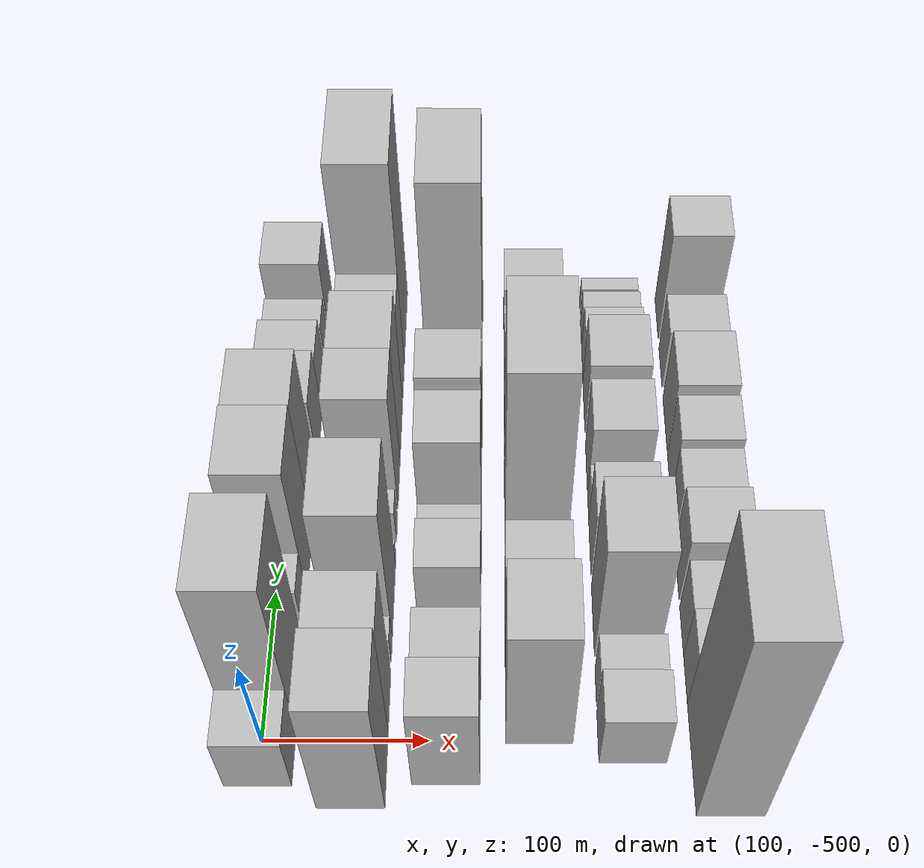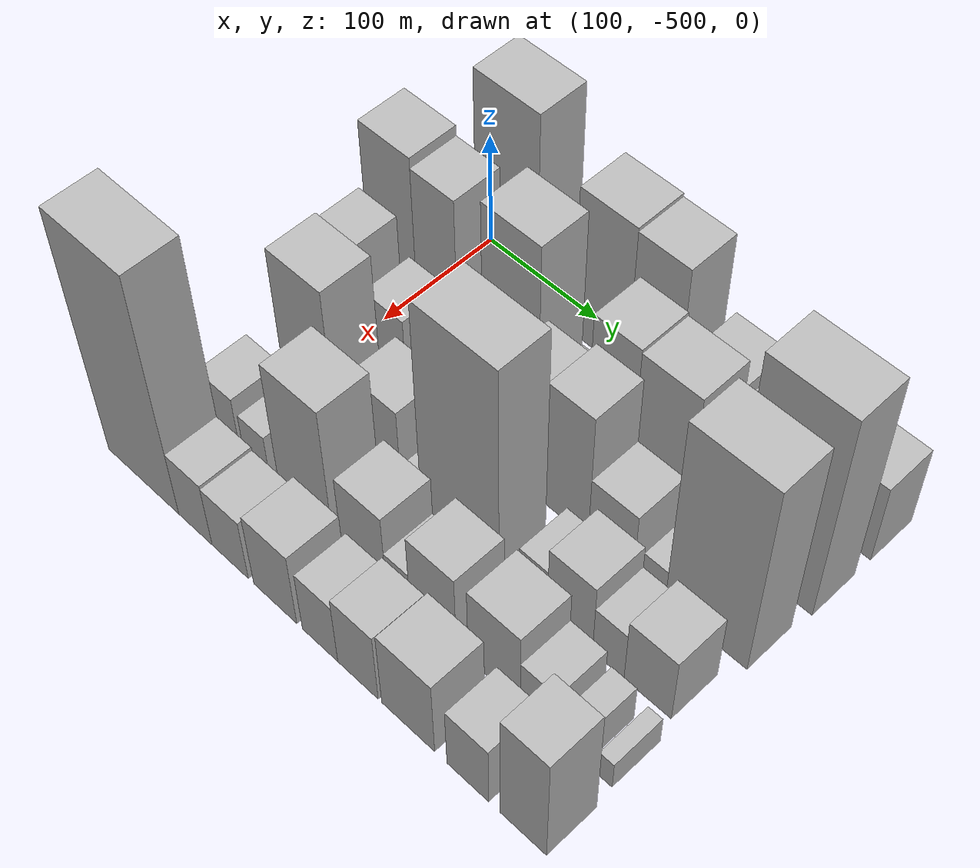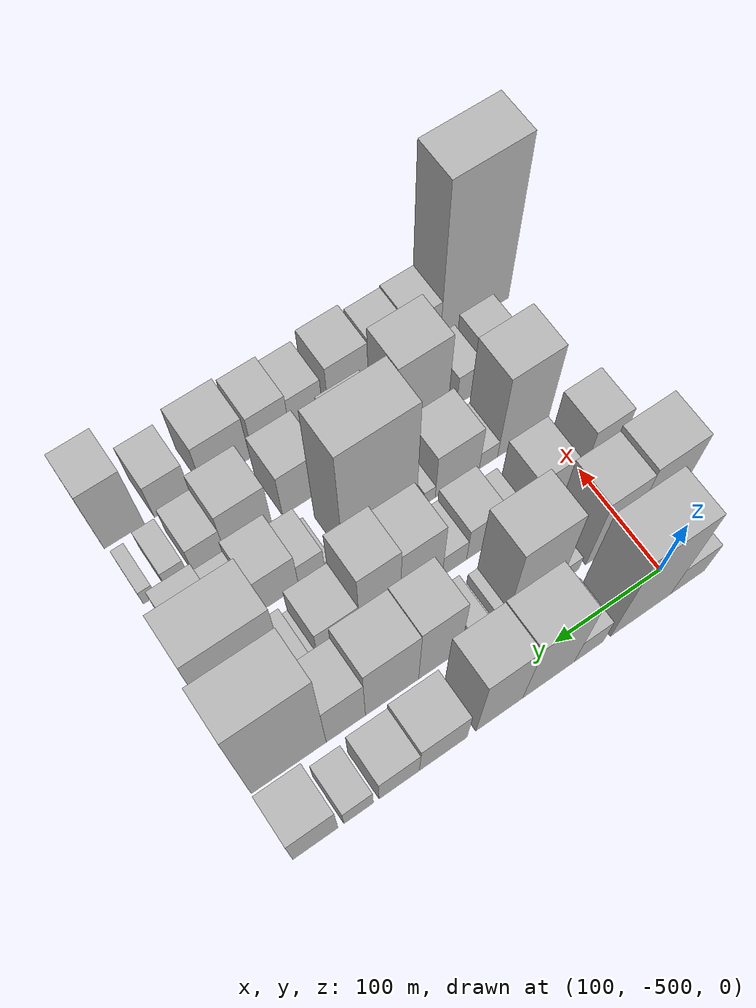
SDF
<sdf version="1.6">
 <world name="default">
  <model name="building_9">
   <static>1</static>
   <pose>100.0000 -510.9255 0 0.000000 0.000000 0.000000</pose>
   <link name="link">
    <pose>0 0 30.00 0 0 0</pose>
    <collision name="collision"><geometry><box><size>40.0000 33.5798 60.0000</size></box></geometry></collision>
    <visual name="visual">
     <cast_shadows>0</cast_shadows>
     <geometry><box><size>40.0000 33.5798 60.0000</size></box></geometry>
     <material>
      <script>
       <uri>model://HANNAS_wall/materials/scripts</uri>
       <uri>model://HANNAS_wall/materials/textures</uri>
       <name>vrc/HANNAS_wall</name>
      </script>
     </material>
    </visual>
   </link>
  </model>
  <model name="building_10">
   <static>1</static>
   <pose>100.0000 -465.3672 0 0.000000 0.000000 0.000000</pose>
   <link name="link">
    <pose>0 0 88.50 0 0 0</pose>
    <collision name="collision"><geometry><box><size>40.0000 57.5368 177.0000</size></box></geometry></collision>
    <visual name="visual">
     <cast_shadows>0</cast_shadows>
     <geometry><box><size>40.0000 57.5368 177.0000</size></box></geometry>
     <material>
      <script>
       <uri>model://HANNAS_wall/materials/scripts</uri>
       <uri>model://HANNAS_wall/materials/textures</uri>
       <name>vrc/HANNAS_wall</name>
      </script>
     </material>
    </visual>
   </link>
  </model>
  <model name="building_11">
   <static>1</static>
   <pose>100.0000 -416.0420 0 0.000000 0.000000 0.000000</pose>
   <link name="link">
    <pose>0 0 27.00 0 0 0</pose>
    <collision name="collision"><geometry><box><size>40.0000 27.1138 54.0000</size></box></geometry></collision>
    <visual name="visual">
     <cast_shadows>0</cast_shadows>
     <geometry><box><size>40.0000 27.1138 54.0000</size></box></geometry>
     <material>
      <script>
       <uri>model://HANNAS_wall/materials/scripts</uri>
       <uri>model://HANNAS_wall/materials/textures</uri>
       <name>vrc/HANNAS_wall</name>
      </script>
     </material>
    </visual>
   </link>
  </model>
  <model name="building_12">
   <static>1</static>
   <pose>100.0000 -378.6074 0 0.000000 0.000000 0.000000</pose>
   <link name="link">
    <pose>0 0 70.50 0 0 0</pose>
    <collision name="collision"><geometry><box><size>40.0000 47.7554 141.0000</size></box></geometry></collision>
    <visual name="visual">
     <cast_shadows>0</cast_shadows>
     <geometry><box><size>40.0000 47.7554 141.0000</size></box></geometry>
     <material>
      <script>
       <uri>model://HANNAS_wall/materials/scripts</uri>
       <uri>model://HANNAS_wall/materials/textures</uri>
       <name>vrc/HANNAS_wall</name>
      </script>
     </material>
    </visual>
   </link>
  </model>
  <model name="building_13">
   <static>1</static>
   <pose>100.0000 -333.4832 0 0.000000 0.000000 0.000000</pose>
   <link name="link">
    <pose>0 0 69.00 0 0 0</pose>
    <collision name="collision"><geometry><box><size>40.0000 42.4929 138.0000</size></box></geometry></collision>
    <visual name="visual">
     <cast_shadows>0</cast_shadows>
     <geometry><box><size>40.0000 42.4929 138.0000</size></box></geometry>
     <material>
      <script>
       <uri>model://HANNAS_wall/materials/scripts</uri>
       <uri>model://HANNAS_wall/materials/textures</uri>
       <name>vrc/HANNAS_wall</name>
      </script>
     </material>
    </visual>
   </link>
  </model>
  <model name="building_14">
   <static>1</static>
   <pose>100.0000 -283.0723 0 0.000000 0.000000 0.000000</pose>
   <link name="link">
    <pose>0 0 36.00 0 0 0</pose>
    <collision name="collision"><geometry><box><size>40.0000 42.3288 72.0000</size></box></geometry></collision>
    <visual name="visual">
     <cast_shadows>0</cast_shadows>
     <geometry><box><size>40.0000 42.3288 72.0000</size></box></geometry>
     <material>
      <script>
       <uri>model://HANNAS_wall/materials/scripts</uri>
       <uri>model://HANNAS_wall/materials/textures</uri>
       <name>vrc/HANNAS_wall</name>
      </script>
     </material>
    </visual>
   </link>
  </model>
  <model name="building_15">
   <static>1</static>
   <pose>100.0000 -244.4086 0 0.000000 0.000000 0.000000</pose>
   <link name="link">
    <pose>0 0 30.00 0 0 0</pose>
    <collision name="collision"><geometry><box><size>40.0000 34.9986 60.0000</size></box></geometry></collision>
    <visual name="visual">
     <cast_shadows>0</cast_shadows>
     <geometry><box><size>40.0000 34.9986 60.0000</size></box></geometry>
     <material>
      <script>
       <uri>model://HANNAS_wall/materials/scripts</uri>
       <uri>model://HANNAS_wall/materials/textures</uri>
       <name>vrc/HANNAS_wall</name>
      </script>
     </material>
    </visual>
   </link>
  </model>
  <model name="building_16">
   <static>1</static>
   <pose>100.0000 -209.2729 0 0.000000 0.000000 0.000000</pose>
   <link name="link">
    <pose>0 0 22.50 0 0 0</pose>
    <collision name="collision"><geometry><box><size>40.0000 25.2728 45.0000</size></box></geometry></collision>
    <visual name="visual">
     <cast_shadows>0</cast_shadows>
     <geometry><box><size>40.0000 25.2728 45.0000</size></box></geometry>
     <material>
      <script>
       <uri>model://HANNAS_wall/materials/scripts</uri>
       <uri>model://HANNAS_wall/materials/textures</uri>
       <name>vrc/HANNAS_wall</name>
      </script>
     </material>
    </visual>
   </link>
  </model>
  <model name="building_17">
   <static>1</static>
   <pose>100.0000 -172.5499 0 0.000000 0.000000 0.000000</pose>
   <link name="link">
    <pose>0 0 37.50 0 0 0</pose>
    <collision name="collision"><geometry><box><size>40.0000 38.1732 75.0000</size></box></geometry></collision>
    <visual name="visual">
     <cast_shadows>0</cast_shadows>
     <geometry><box><size>40.0000 38.1732 75.0000</size></box></geometry>
     <material>
      <script>
       <uri>model://HANNAS_wall/materials/scripts</uri>
       <uri>model://HANNAS_wall/materials/textures</uri>
       <name>vrc/HANNAS_wall</name>
      </script>
     </material>
    </visual>
   </link>
  </model>
  <model name="building_61">
   <static>1</static>
   <pose>155.0000 -517.8341 0 0.000000 0.000000 0.000000</pose>
   <link name="link">
    <pose>0 0 69.00 0 0 0</pose>
    <collision name="collision"><geometry><box><size>40.0000 46.5818 138.0000</size></box></geometry></collision>
    <visual name="visual">
     <cast_shadows>0</cast_shadows>
     <geometry><box><size>40.0000 46.5818 138.0000</size></box></geometry>
     <material>
      <script>
       <uri>model://HANNAS_wall/materials/scripts</uri>
       <uri>model://HANNAS_wall/materials/textures</uri>
       <name>vrc/HANNAS_wall</name>
      </script>
     </material>
    </visual>
   </link>
  </model>
  <model name="building_62">
   <static>1</static>
   <pose>155.0000 -475.1864 0 0.000000 0.000000 0.000000</pose>
   <link name="link">
    <pose>0 0 64.50 0 0 0</pose>
    <collision name="collision"><geometry><box><size>40.0000 38.7135 129.0000</size></box></geometry></collision>
    <visual name="visual">
     <cast_shadows>0</cast_shadows>
     <geometry><box><size>40.0000 38.7135 129.0000</size></box></geometry>
     <material>
      <script>
       <uri>model://HANNAS_wall/materials/scripts</uri>
       <uri>model://HANNAS_wall/materials/textures</uri>
       <name>vrc/HANNAS_wall</name>
      </script>
     </material>
    </visual>
   </link>
  </model>
  <model name="building_63">
   <static>1</static>
   <pose>155.0000 -440.5950 0 0.000000 0.000000 0.000000</pose>
   <link name="link">
    <pose>0 0 15.00 0 0 0</pose>
    <collision name="collision"><geometry><box><size>40.0000 16.4694 30.0000</size></box></geometry></collision>
    <visual name="visual">
     <cast_shadows>0</cast_shadows>
     <geometry><box><size>40.0000 16.4694 30.0000</size></box></geometry>
     <material>
      <script>
       <uri>model://HANNAS_wall/materials/scripts</uri>
       <uri>model://HANNAS_wall/materials/textures</uri>
       <name>vrc/HANNAS_wall</name>
      </script>
     </material>
    </visual>
   </link>
  </model>
  <model name="building_64">
   <static>1</static>
   <pose>155.0000 -406.8603 0 0.000000 0.000000 0.000000</pose>
   <link name="link">
    <pose>0 0 73.50 0 0 0</pose>
    <collision name="collision"><geometry><box><size>40.0000 50.9999 147.0000</size></box></geometry></collision>
    <visual name="visual">
     <cast_shadows>0</cast_shadows>
     <geometry><box><size>40.0000 50.9999 147.0000</size></box></geometry>
     <material>
      <script>
       <uri>model://HANNAS_wall/materials/scripts</uri>
       <uri>model://HANNAS_wall/materials/textures</uri>
       <name>vrc/HANNAS_wall</name>
      </script>
     </material>
    </visual>
   </link>
  </model>
  <model name="building_65">
   <static>1</static>
   <pose>155.0000 -376.9759 0 0.000000 0.000000 0.000000</pose>
   <link name="link">
    <pose>0 0 10.50 0 0 0</pose>
    <collision name="collision"><geometry><box><size>40.0000 8.7690 21.0000</size></box></geometry></collision>
    <visual name="visual">
     <cast_shadows>0</cast_shadows>
     <geometry><box><size>40.0000 8.7690 21.0000</size></box></geometry>
     <material>
      <script>
       <uri>model://HANNAS_wall/materials/scripts</uri>
       <uri>model://HANNAS_wall/materials/textures</uri>
       <name>vrc/HANNAS_wall</name>
      </script>
     </material>
    </visual>
   </link>
  </model>
  <model name="building_66">
   <static>1</static>
   <pose>155.0000 -354.3933 0 0.000000 0.000000 0.000000</pose>
   <link name="link">
    <pose>0 0 18.00 0 0 0</pose>
    <collision name="collision"><geometry><box><size>40.0000 18.3961 36.0000</size></box></geometry></collision>
    <visual name="visual">
     <cast_shadows>0</cast_shadows>
     <geometry><box><size>40.0000 18.3961 36.0000</size></box></geometry>
     <material>
      <script>
       <uri>model://HANNAS_wall/materials/scripts</uri>
       <uri>model://HANNAS_wall/materials/textures</uri>
       <name>vrc/HANNAS_wall</name>
      </script>
     </material>
    </visual>
   </link>
  </model>
  <model name="building_67">
   <static>1</static>
   <pose>155.0000 -319.0853 0 0.000000 0.000000 0.000000</pose>
   <link name="link">
    <pose>0 0 61.50 0 0 0</pose>
    <collision name="collision"><geometry><box><size>40.0000 38.2199 123.0000</size></box></geometry></collision>
    <visual name="visual">
     <cast_shadows>0</cast_shadows>
     <geometry><box><size>40.0000 38.2199 123.0000</size></box></geometry>
     <material>
      <script>
       <uri>model://HANNAS_wall/materials/scripts</uri>
       <uri>model://HANNAS_wall/materials/textures</uri>
       <name>vrc/HANNAS_wall</name>
      </script>
     </material>
    </visual>
   </link>
  </model>
  <model name="building_68">
   <static>1</static>
   <pose>155.0000 -276.2588 0 0.000000 0.000000 0.000000</pose>
   <link name="link">
    <pose>0 0 60.00 0 0 0</pose>
    <collision name="collision"><geometry><box><size>40.0000 47.4332 120.0000</size></box></geometry></collision>
    <visual name="visual">
     <cast_shadows>0</cast_shadows>
     <geometry><box><size>40.0000 47.4332 120.0000</size></box></geometry>
     <material>
      <script>
       <uri>model://HANNAS_wall/materials/scripts</uri>
       <uri>model://HANNAS_wall/materials/textures</uri>
       <name>vrc/HANNAS_wall</name>
      </script>
     </material>
    </visual>
   </link>
  </model>
  <model name="building_69">
   <static>1</static>
   <pose>155.0000 -235.3952 0 0.000000 0.000000 0.000000</pose>
   <link name="link">
    <pose>0 0 48.00 0 0 0</pose>
    <collision name="collision"><geometry><box><size>40.0000 34.2940 96.0000</size></box></geometry></collision>
    <visual name="visual">
     <cast_shadows>0</cast_shadows>
     <geometry><box><size>40.0000 34.2940 96.0000</size></box></geometry>
     <material>
      <script>
       <uri>model://HANNAS_wall/materials/scripts</uri>
       <uri>model://HANNAS_wall/materials/textures</uri>
       <name>vrc/HANNAS_wall</name>
      </script>
     </material>
    </visual>
   </link>
  </model>
  <model name="building_70">
   <static>1</static>
   <pose>155.0000 -186.0356 0 0.000000 0.000000 0.000000</pose>
   <link name="link">
    <pose>0 0 97.50 0 0 0</pose>
    <collision name="collision"><geometry><box><size>40.0000 64.4252 195.0000</size></box></geometry></collision>
    <visual name="visual">
     <cast_shadows>0</cast_shadows>
     <geometry><box><size>40.0000 64.4252 195.0000</size></box></geometry>
     <material>
      <script>
       <uri>model://HANNAS_wall/materials/scripts</uri>
       <uri>model://HANNAS_wall/materials/textures</uri>
       <name>vrc/HANNAS_wall</name>
      </script>
     </material>
    </visual>
   </link>
  </model>
  <model name="building_110">
   <static>1</static>
   <pose>210.0000 -509.6735 0 0.000000 0.000000 0.000000</pose>
   <link name="link">
    <pose>0 0 49.50 0 0 0</pose>
    <collision name="collision"><geometry><box><size>40.0000 34.6664 99.0000</size></box></geometry></collision>
    <visual name="visual">
     <cast_shadows>0</cast_shadows>
     <geometry><box><size>40.0000 34.6664 99.0000</size></box></geometry>
     <material>
      <script>
       <uri>model://HANNAS_wall/materials/scripts</uri>
       <uri>model://HANNAS_wall/materials/textures</uri>
       <name>vrc/HANNAS_wall</name>
      </script>
     </material>
    </visual>
   </link>
  </model>
  <model name="building_111">
   <static>1</static>
   <pose>210.0000 -464.3619 0 0.000000 0.000000 0.000000</pose>
   <link name="link">
    <pose>0 0 34.50 0 0 0</pose>
    <collision name="collision"><geometry><box><size>40.0000 35.9568 69.0000</size></box></geometry></collision>
    <visual name="visual">
     <cast_shadows>0</cast_shadows>
     <geometry><box><size>40.0000 35.9568 69.0000</size></box></geometry>
     <material>
      <script>
       <uri>model://HANNAS_wall/materials/scripts</uri>
       <uri>model://HANNAS_wall/materials/textures</uri>
       <name>vrc/HANNAS_wall</name>
      </script>
     </material>
    </visual>
   </link>
  </model>
  <model name="building_112">
   <static>1</static>
   <pose>210.0000 -433.2214 0 0.000000 0.000000 0.000000</pose>
   <link name="link">
    <pose>0 0 13.50 0 0 0</pose>
    <collision name="collision"><geometry><box><size>40.0000 12.3242 27.0000</size></box></geometry></collision>
    <visual name="visual">
     <cast_shadows>0</cast_shadows>
     <geometry><box><size>40.0000 12.3242 27.0000</size></box></geometry>
     <material>
      <script>
       <uri>model://HANNAS_wall/materials/scripts</uri>
       <uri>model://HANNAS_wall/materials/textures</uri>
       <name>vrc/HANNAS_wall</name>
      </script>
     </material>
    </visual>
   </link>
  </model>
  <model name="building_113">
   <static>1</static>
   <pose>210.0000 -400.1797 0 0.000000 0.000000 0.000000</pose>
   <link name="link">
    <pose>0 0 31.50 0 0 0</pose>
    <collision name="collision"><geometry><box><size>40.0000 33.7593 63.0000</size></box></geometry></collision>
    <visual name="visual">
     <cast_shadows>0</cast_shadows>
     <geometry><box><size>40.0000 33.7593 63.0000</size></box></geometry>
     <material>
      <script>
       <uri>model://HANNAS_wall/materials/scripts</uri>
       <uri>model://HANNAS_wall/materials/textures</uri>
       <name>vrc/HANNAS_wall</name>
      </script>
     </material>
    </visual>
   </link>
  </model>
  <model name="building_114">
   <static>1</static>
   <pose>210.0000 -371.8859 0 0.000000 0.000000 0.000000</pose>
   <link name="link">
    <pose>0 0 21.00 0 0 0</pose>
    <collision name="collision"><geometry><box><size>40.0000 22.8283 42.0000</size></box></geometry></collision>
    <visual name="visual">
     <cast_shadows>0</cast_shadows>
     <geometry><box><size>40.0000 22.8283 42.0000</size></box></geometry>
     <material>
      <script>
       <uri>model://HANNAS_wall/materials/scripts</uri>
       <uri>model://HANNAS_wall/materials/textures</uri>
       <name>vrc/HANNAS_wall</name>
      </script>
     </material>
    </visual>
   </link>
  </model>
  <model name="building_115">
   <static>1</static>
   <pose>210.0000 -341.2044 0 0.000000 0.000000 0.000000</pose>
   <link name="link">
    <pose>0 0 55.50 0 0 0</pose>
    <collision name="collision"><geometry><box><size>40.0000 38.5346 111.0000</size></box></geometry></collision>
    <visual name="visual">
     <cast_shadows>0</cast_shadows>
     <geometry><box><size>40.0000 38.5346 111.0000</size></box></geometry>
     <material>
      <script>
       <uri>model://HANNAS_wall/materials/scripts</uri>
       <uri>model://HANNAS_wall/materials/textures</uri>
       <name>vrc/HANNAS_wall</name>
      </script>
     </material>
    </visual>
   </link>
  </model>
  <model name="building_116">
   <static>1</static>
   <pose>210.0000 -303.4762 0 0.000000 0.000000 0.000000</pose>
   <link name="link">
    <pose>0 0 61.50 0 0 0</pose>
    <collision name="collision"><geometry><box><size>40.0000 36.9217 123.0000</size></box></geometry></collision>
    <visual name="visual">
     <cast_shadows>0</cast_shadows>
     <geometry><box><size>40.0000 36.9217 123.0000</size></box></geometry>
     <material>
      <script>
       <uri>model://HANNAS_wall/materials/scripts</uri>
       <uri>model://HANNAS_wall/materials/textures</uri>
       <name>vrc/HANNAS_wall</name>
      </script>
     </material>
    </visual>
   </link>
  </model>
  <model name="building_117">
   <static>1</static>
   <pose>210.0000 -266.2286 0 0.000000 0.000000 0.000000</pose>
   <link name="link">
    <pose>0 0 31.50 0 0 0</pose>
    <collision name="collision"><geometry><box><size>40.0000 37.5737 63.0000</size></box></geometry></collision>
    <visual name="visual">
     <cast_shadows>0</cast_shadows>
     <geometry><box><size>40.0000 37.5737 63.0000</size></box></geometry>
     <material>
      <script>
       <uri>model://HANNAS_wall/materials/scripts</uri>
       <uri>model://HANNAS_wall/materials/textures</uri>
       <name>vrc/HANNAS_wall</name>
      </script>
     </material>
    </visual>
   </link>
  </model>
  <model name="building_118">
   <static>1</static>
   <pose>210.0000 -244.1978 0 0.000000 0.000000 0.000000</pose>
   <link name="link">
    <pose>0 0 7.50 0 0 0</pose>
    <collision name="collision"><geometry><box><size>40.0000 6.4879 15.0000</size></box></geometry></collision>
    <visual name="visual">
     <cast_shadows>0</cast_shadows>
     <geometry><box><size>40.0000 6.4879 15.0000</size></box></geometry>
     <material>
      <script>
       <uri>model://HANNAS_wall/materials/scripts</uri>
       <uri>model://HANNAS_wall/materials/textures</uri>
       <name>vrc/HANNAS_wall</name>
      </script>
     </material>
    </visual>
   </link>
  </model>
  <model name="building_119">
   <static>1</static>
   <pose>210.0000 -231.4079 0 0.000000 0.000000 0.000000</pose>
   <link name="link">
    <pose>0 0 16.50 0 0 0</pose>
    <collision name="collision"><geometry><box><size>40.0000 19.0919 33.0000</size></box></geometry></collision>
    <visual name="visual">
     <cast_shadows>0</cast_shadows>
     <geometry><box><size>40.0000 19.0919 33.0000</size></box></geometry>
     <material>
      <script>
       <uri>model://HANNAS_wall/materials/scripts</uri>
       <uri>model://HANNAS_wall/materials/textures</uri>
       <name>vrc/HANNAS_wall</name>
      </script>
     </material>
    </visual>
   </link>
  </model>
  <model name="building_120">
   <static>1</static>
   <pose>210.0000 -189.6673 0 0.000000 0.000000 0.000000</pose>
   <link name="link">
    <pose>0 0 91.50 0 0 0</pose>
    <collision name="collision"><geometry><box><size>40.0000 64.3892 183.0000</size></box></geometry></collision>
    <visual name="visual">
     <cast_shadows>0</cast_shadows>
     <geometry><box><size>40.0000 64.3892 183.0000</size></box></geometry>
     <material>
      <script>
       <uri>model://HANNAS_wall/materials/scripts</uri>
       <uri>model://HANNAS_wall/materials/textures</uri>
       <name>vrc/HANNAS_wall</name>
      </script>
     </material>
    </visual>
   </link>
  </model>
  <model name="building_164">
   <static>1</static>
   <pose>265.0000 -477.3861 0 0.000000 0.000000 0.000000</pose>
   <link name="link">
    <pose>0 0 69.00 0 0 0</pose>
    <collision name="collision"><geometry><box><size>40.0000 48.3148 138.0000</size></box></geometry></collision>
    <visual name="visual">
     <cast_shadows>0</cast_shadows>
     <geometry><box><size>40.0000 48.3148 138.0000</size></box></geometry>
     <material>
      <script>
       <uri>model://HANNAS_wall/materials/scripts</uri>
       <uri>model://HANNAS_wall/materials/textures</uri>
       <name>vrc/HANNAS_wall</name>
      </script>
     </material>
    </visual>
   </link>
  </model>
  <model name="building_165">
   <static>1</static>
   <pose>265.0000 -444.3827 0 0.000000 0.000000 0.000000</pose>
   <link name="link">
    <pose>0 0 15.00 0 0 0</pose>
    <collision name="collision"><geometry><box><size>40.0000 17.6920 30.0000</size></box></geometry></collision>
    <visual name="visual">
     <cast_shadows>0</cast_shadows>
     <geometry><box><size>40.0000 17.6920 30.0000</size></box></geometry>
     <material>
      <script>
       <uri>model://HANNAS_wall/materials/scripts</uri>
       <uri>model://HANNAS_wall/materials/textures</uri>
       <name>vrc/HANNAS_wall</name>
      </script>
     </material>
    </visual>
   </link>
  </model>
  <model name="building_166">
   <static>1</static>
   <pose>265.0000 -414.3003 0 0.000000 0.000000 0.000000</pose>
   <link name="link">
    <pose>0 0 39.00 0 0 0</pose>
    <collision name="collision"><geometry><box><size>40.0000 42.4727 78.0000</size></box></geometry></collision>
    <visual name="visual">
     <cast_shadows>0</cast_shadows>
     <geometry><box><size>40.0000 42.4727 78.0000</size></box></geometry>
     <material>
      <script>
       <uri>model://HANNAS_wall/materials/scripts</uri>
       <uri>model://HANNAS_wall/materials/textures</uri>
       <name>vrc/HANNAS_wall</name>
      </script>
     </material>
    </visual>
   </link>
  </model>
  <model name="building_167">
   <static>1</static>
   <pose>265.0000 -387.7452 0 0.000000 0.000000 0.000000</pose>
   <link name="link">
    <pose>0 0 12.00 0 0 0</pose>
    <collision name="collision"><geometry><box><size>40.0000 10.6375 24.0000</size></box></geometry></collision>
    <visual name="visual">
     <cast_shadows>0</cast_shadows>
     <geometry><box><size>40.0000 10.6375 24.0000</size></box></geometry>
     <material>
      <script>
       <uri>model://HANNAS_wall/materials/scripts</uri>
       <uri>model://HANNAS_wall/materials/textures</uri>
       <name>vrc/HANNAS_wall</name>
      </script>
     </material>
    </visual>
   </link>
  </model>
  <model name="building_168">
   <static>1</static>
   <pose>265.0000 -378.7231 0 0.000000 0.000000 0.000000</pose>
   <link name="link">
    <pose>0 0 9.00 0 0 0</pose>
    <collision name="collision"><geometry><box><size>40.0000 7.4069 18.0000</size></box></geometry></collision>
    <visual name="visual">
     <cast_shadows>0</cast_shadows>
     <geometry><box><size>40.0000 7.4069 18.0000</size></box></geometry>
     <material>
      <script>
       <uri>model://HANNAS_wall/materials/scripts</uri>
       <uri>model://HANNAS_wall/materials/textures</uri>
       <name>vrc/HANNAS_wall</name>
      </script>
     </material>
    </visual>
   </link>
  </model>
  <model name="building_169">
   <static>1</static>
   <pose>265.0000 -340.9649 0 0.000000 0.000000 0.000000</pose>
   <link name="link">
    <pose>0 0 99.00 0 0 0</pose>
    <collision name="collision"><geometry><box><size>40.0000 68.1093 198.0000</size></box></geometry></collision>
    <visual name="visual">
     <cast_shadows>0</cast_shadows>
     <geometry><box><size>40.0000 68.1093 198.0000</size></box></geometry>
     <material>
      <script>
       <uri>model://HANNAS_wall/materials/scripts</uri>
       <uri>model://HANNAS_wall/materials/textures</uri>
       <name>vrc/HANNAS_wall</name>
      </script>
     </material>
    </visual>
   </link>
  </model>
  <model name="building_170">
   <static>1</static>
   <pose>265.0000 -293.4502 0 0.000000 0.000000 0.000000</pose>
   <link name="link">
    <pose>0 0 7.50 0 0 0</pose>
    <collision name="collision"><geometry><box><size>40.0000 6.9201 15.0000</size></box></geometry></collision>
    <visual name="visual">
     <cast_shadows>0</cast_shadows>
     <geometry><box><size>40.0000 6.9201 15.0000</size></box></geometry>
     <material>
      <script>
       <uri>model://HANNAS_wall/materials/scripts</uri>
       <uri>model://HANNAS_wall/materials/textures</uri>
       <name>vrc/HANNAS_wall</name>
      </script>
     </material>
    </visual>
   </link>
  </model>
  <model name="building_171">
   <static>1</static>
   <pose>265.0000 -278.2008 0 0.000000 0.000000 0.000000</pose>
   <link name="link">
    <pose>0 0 22.50 0 0 0</pose>
    <collision name="collision"><geometry><box><size>40.0000 23.5788 45.0000</size></box></geometry></collision>
    <visual name="visual">
     <cast_shadows>0</cast_shadows>
     <geometry><box><size>40.0000 23.5788 45.0000</size></box></geometry>
     <material>
      <script>
       <uri>model://HANNAS_wall/materials/scripts</uri>
       <uri>model://HANNAS_wall/materials/textures</uri>
       <name>vrc/HANNAS_wall</name>
      </script>
     </material>
    </visual>
   </link>
  </model>
  <model name="building_172">
   <static>1</static>
   <pose>265.0000 -247.8808 0 0.000000 0.000000 0.000000</pose>
   <link name="link">
    <pose>0 0 34.50 0 0 0</pose>
    <collision name="collision"><geometry><box><size>40.0000 37.0611 69.0000</size></box></geometry></collision>
    <visual name="visual">
     <cast_shadows>0</cast_shadows>
     <geometry><box><size>40.0000 37.0611 69.0000</size></box></geometry>
     <material>
      <script>
       <uri>model://HANNAS_wall/materials/scripts</uri>
       <uri>model://HANNAS_wall/materials/textures</uri>
       <name>vrc/HANNAS_wall</name>
      </script>
     </material>
    </visual>
   </link>
  </model>
  <model name="building_173">
   <static>1</static>
   <pose>265.0000 -216.7688 0 0.000000 0.000000 0.000000</pose>
   <link name="link">
    <pose>0 0 24.00 0 0 0</pose>
    <collision name="collision"><geometry><box><size>40.0000 25.1628 48.0000</size></box></geometry></collision>
    <visual name="visual">
     <cast_shadows>0</cast_shadows>
     <geometry><box><size>40.0000 25.1628 48.0000</size></box></geometry>
     <material>
      <script>
       <uri>model://HANNAS_wall/materials/scripts</uri>
       <uri>model://HANNAS_wall/materials/textures</uri>
       <name>vrc/HANNAS_wall</name>
      </script>
     </material>
    </visual>
   </link>
  </model>
  <model name="building_174">
   <static>1</static>
   <pose>265.0000 -185.7360 0 0.000000 0.000000 0.000000</pose>
   <link name="link">
    <pose>0 0 31.50 0 0 0</pose>
    <collision name="collision"><geometry><box><size>40.0000 36.9029 63.0000</size></box></geometry></collision>
    <visual name="visual">
     <cast_shadows>0</cast_shadows>
     <geometry><box><size>40.0000 36.9029 63.0000</size></box></geometry>
     <material>
      <script>
       <uri>model://HANNAS_wall/materials/scripts</uri>
       <uri>model://HANNAS_wall/materials/textures</uri>
       <name>vrc/HANNAS_wall</name>
      </script>
     </material>
    </visual>
   </link>
  </model>
  <model name="building_219">
   <static>1</static>
   <pose>320.0000 -497.5353 0 0.000000 0.000000 0.000000</pose>
   <link name="link">
    <pose>0 0 30.00 0 0 0</pose>
    <collision name="collision"><geometry><box><size>40.0000 32.2962 60.0000</size></box></geometry></collision>
    <visual name="visual">
     <cast_shadows>0</cast_shadows>
     <geometry><box><size>40.0000 32.2962 60.0000</size></box></geometry>
     <material>
      <script>
       <uri>model://HANNAS_wall/materials/scripts</uri>
       <uri>model://HANNAS_wall/materials/textures</uri>
       <name>vrc/HANNAS_wall</name>
      </script>
     </material>
    </visual>
   </link>
  </model>
  <model name="building_220">
   <static>1</static>
   <pose>320.0000 -465.3110 0 0.000000 0.000000 0.000000</pose>
   <link name="link">
    <pose>0 0 24.00 0 0 0</pose>
    <collision name="collision"><geometry><box><size>40.0000 24.1522 48.0000</size></box></geometry></collision>
    <visual name="visual">
     <cast_shadows>0</cast_shadows>
     <geometry><box><size>40.0000 24.1522 48.0000</size></box></geometry>
     <material>
      <script>
       <uri>model://HANNAS_wall/materials/scripts</uri>
       <uri>model://HANNAS_wall/materials/textures</uri>
       <name>vrc/HANNAS_wall</name>
      </script>
     </material>
    </visual>
   </link>
  </model>
  <model name="building_221">
   <static>1</static>
   <pose>320.0000 -419.8625 0 0.000000 0.000000 0.000000</pose>
   <link name="link">
    <pose>0 0 64.50 0 0 0</pose>
    <collision name="collision"><geometry><box><size>40.0000 48.7448 129.0000</size></box></geometry></collision>
    <visual name="visual">
     <cast_shadows>0</cast_shadows>
     <geometry><box><size>40.0000 48.7448 129.0000</size></box></geometry>
     <material>
      <script>
       <uri>model://HANNAS_wall/materials/scripts</uri>
       <uri>model://HANNAS_wall/materials/textures</uri>
       <name>vrc/HANNAS_wall</name>
      </script>
     </material>
    </visual>
   </link>
  </model>
  <model name="building_222">
   <static>1</static>
   <pose>320.0000 -367.6466 0 0.000000 0.000000 0.000000</pose>
   <link name="link">
    <pose>0 0 36.00 0 0 0</pose>
    <collision name="collision"><geometry><box><size>40.0000 39.6871 72.0000</size></box></geometry></collision>
    <visual name="visual">
     <cast_shadows>0</cast_shadows>
     <geometry><box><size>40.0000 39.6871 72.0000</size></box></geometry>
     <material>
      <script>
       <uri>model://HANNAS_wall/materials/scripts</uri>
       <uri>model://HANNAS_wall/materials/textures</uri>
       <name>vrc/HANNAS_wall</name>
      </script>
     </material>
    </visual>
   </link>
  </model>
  <model name="building_223">
   <static>1</static>
   <pose>320.0000 -337.2678 0 0.000000 0.000000 0.000000</pose>
   <link name="link">
    <pose>0 0 18.00 0 0 0</pose>
    <collision name="collision"><geometry><box><size>40.0000 21.0705 36.0000</size></box></geometry></collision>
    <visual name="visual">
     <cast_shadows>0</cast_shadows>
     <geometry><box><size>40.0000 21.0705 36.0000</size></box></geometry>
     <material>
      <script>
       <uri>model://HANNAS_wall/materials/scripts</uri>
       <uri>model://HANNAS_wall/materials/textures</uri>
       <name>vrc/HANNAS_wall</name>
      </script>
     </material>
    </visual>
   </link>
  </model>
  <model name="building_224">
   <static>1</static>
   <pose>320.0000 -306.9965 0 0.000000 0.000000 0.000000</pose>
   <link name="link">
    <pose>0 0 37.50 0 0 0</pose>
    <collision name="collision"><geometry><box><size>40.0000 39.4722 75.0000</size></box></geometry></collision>
    <visual name="visual">
     <cast_shadows>0</cast_shadows>
     <geometry><box><size>40.0000 39.4722 75.0000</size></box></geometry>
     <material>
      <script>
       <uri>model://HANNAS_wall/materials/scripts</uri>
       <uri>model://HANNAS_wall/materials/textures</uri>
       <name>vrc/HANNAS_wall</name>
      </script>
     </material>
    </visual>
   </link>
  </model>
  <model name="building_225">
   <static>1</static>
   <pose>320.0000 -255.9664 0 0.000000 0.000000 0.000000</pose>
   <link name="link">
    <pose>0 0 37.50 0 0 0</pose>
    <collision name="collision"><geometry><box><size>40.0000 42.5882 75.0000</size></box></geometry></collision>
    <visual name="visual">
     <cast_shadows>0</cast_shadows>
     <geometry><box><size>40.0000 42.5882 75.0000</size></box></geometry>
     <material>
      <script>
       <uri>model://HANNAS_wall/materials/scripts</uri>
       <uri>model://HANNAS_wall/materials/textures</uri>
       <name>vrc/HANNAS_wall</name>
      </script>
     </material>
    </visual>
   </link>
  </model>
  <model name="building_226">
   <static>1</static>
   <pose>320.0000 -220.3482 0 0.000000 0.000000 0.000000</pose>
   <link name="link">
    <pose>0 0 24.00 0 0 0</pose>
    <collision name="collision"><geometry><box><size>40.0000 28.6481 48.0000</size></box></geometry></collision>
    <visual name="visual">
     <cast_shadows>0</cast_shadows>
     <geometry><box><size>40.0000 28.6481 48.0000</size></box></geometry>
     <material>
      <script>
       <uri>model://HANNAS_wall/materials/scripts</uri>
       <uri>model://HANNAS_wall/materials/textures</uri>
       <name>vrc/HANNAS_wall</name>
      </script>
     </material>
    </visual>
   </link>
  </model>
  <model name="building_227">
   <static>1</static>
   <pose>320.0000 -192.3097 0 0.000000 0.000000 0.000000</pose>
   <link name="link">
    <pose>0 0 18.00 0 0 0</pose>
    <collision name="collision"><geometry><box><size>40.0000 19.4289 36.0000</size></box></geometry></collision>
    <visual name="visual">
     <cast_shadows>0</cast_shadows>
     <geometry><box><size>40.0000 19.4289 36.0000</size></box></geometry>
     <material>
      <script>
       <uri>model://HANNAS_wall/materials/scripts</uri>
       <uri>model://HANNAS_wall/materials/textures</uri>
       <name>vrc/HANNAS_wall</name>
      </script>
     </material>
    </visual>
   </link>
  </model>
  <model name="building_228">
   <static>1</static>
   <pose>320.0000 -167.9087 0 0.000000 0.000000 0.000000</pose>
   <link name="link">
    <pose>0 0 13.50 0 0 0</pose>
    <collision name="collision"><geometry><box><size>40.0000 11.3732 27.0000</size></box></geometry></collision>
    <visual name="visual">
     <cast_shadows>0</cast_shadows>
     <geometry><box><size>40.0000 11.3732 27.0000</size></box></geometry>
     <material>
      <script>
       <uri>model://HANNAS_wall/materials/scripts</uri>
       <uri>model://HANNAS_wall/materials/textures</uri>
       <name>vrc/HANNAS_wall</name>
      </script>
     </material>
    </visual>
   </link>
  </model>
  <model name="building_265">
   <static>1</static>
   <pose>375.0000 -510.8116 0 0.000000 0.000000 0.000000</pose>
   <link name="link">
    <pose>0 0 112.50 0 0 0</pose>
    <collision name="collision"><geometry><box><size>40.0000 69.4373 225.0000</size></box></geometry></collision>
    <visual name="visual">
     <cast_shadows>0</cast_shadows>
     <geometry><box><size>40.0000 69.4373 225.0000</size></box></geometry>
     <material>
      <script>
       <uri>model://HANNAS_wall/materials/scripts</uri>
       <uri>model://HANNAS_wall/materials/textures</uri>
       <name>vrc/HANNAS_wall</name>
      </script>
     </material>
    </visual>
   </link>
  </model>
  <model name="building_266">
   <static>1</static>
   <pose>375.0000 -460.1215 0 0.000000 0.000000 0.000000</pose>
   <link name="link">
    <pose>0 0 31.50 0 0 0</pose>
    <collision name="collision"><geometry><box><size>40.0000 31.9429 63.0000</size></box></geometry></collision>
    <visual name="visual">
     <cast_shadows>0</cast_shadows>
     <geometry><box><size>40.0000 31.9429 63.0000</size></box></geometry>
     <material>
      <script>
       <uri>model://HANNAS_wall/materials/scripts</uri>
       <uri>model://HANNAS_wall/materials/textures</uri>
       <name>vrc/HANNAS_wall</name>
      </script>
     </material>
    </visual>
   </link>
  </model>
  <model name="building_267">
   <static>1</static>
   <pose>375.0000 -427.2030 0 0.000000 0.000000 0.000000</pose>
   <link name="link">
    <pose>0 0 30.00 0 0 0</pose>
    <collision name="collision"><geometry><box><size>40.0000 33.8940 60.0000</size></box></geometry></collision>
    <visual name="visual">
     <cast_shadows>0</cast_shadows>
     <geometry><box><size>40.0000 33.8940 60.0000</size></box></geometry>
     <material>
      <script>
       <uri>model://HANNAS_wall/materials/scripts</uri>
       <uri>model://HANNAS_wall/materials/textures</uri>
       <name>vrc/HANNAS_wall</name>
      </script>
     </material>
    </visual>
   </link>
  </model>
  <model name="building_268">
   <static>1</static>
   <pose>375.0000 -385.7360 0 0.000000 0.000000 0.000000</pose>
   <link name="link">
    <pose>0 0 36.00 0 0 0</pose>
    <collision name="collision"><geometry><box><size>40.0000 39.0401 72.0000</size></box></geometry></collision>
    <visual name="visual">
     <cast_shadows>0</cast_shadows>
     <geometry><box><size>40.0000 39.0401 72.0000</size></box></geometry>
     <material>
      <script>
       <uri>model://HANNAS_wall/materials/scripts</uri>
       <uri>model://HANNAS_wall/materials/textures</uri>
       <name>vrc/HANNAS_wall</name>
      </script>
     </material>
    </visual>
   </link>
  </model>
  <model name="building_269">
   <static>1</static>
   <pose>375.0000 -345.6250 0 0.000000 0.000000 0.000000</pose>
   <link name="link">
    <pose>0 0 30.00 0 0 0</pose>
    <collision name="collision"><geometry><box><size>40.0000 31.1819 60.0000</size></box></geometry></collision>
    <visual name="visual">
     <cast_shadows>0</cast_shadows>
     <geometry><box><size>40.0000 31.1819 60.0000</size></box></geometry>
     <material>
      <script>
       <uri>model://HANNAS_wall/materials/scripts</uri>
       <uri>model://HANNAS_wall/materials/textures</uri>
       <name>vrc/HANNAS_wall</name>
      </script>
     </material>
    </visual>
   </link>
  </model>
  <model name="building_270">
   <static>1</static>
   <pose>375.0000 -312.7002 0 0.000000 0.000000 0.000000</pose>
   <link name="link">
    <pose>0 0 34.50 0 0 0</pose>
    <collision name="collision"><geometry><box><size>40.0000 34.6677 69.0000</size></box></geometry></collision>
    <visual name="visual">
     <cast_shadows>0</cast_shadows>
     <geometry><box><size>40.0000 34.6677 69.0000</size></box></geometry>
     <material>
      <script>
       <uri>model://HANNAS_wall/materials/scripts</uri>
       <uri>model://HANNAS_wall/materials/textures</uri>
       <name>vrc/HANNAS_wall</name>
      </script>
     </material>
    </visual>
   </link>
  </model>
  <model name="building_271">
   <static>1</static>
   <pose>375.0000 -270.3373 0 0.000000 0.000000 0.000000</pose>
   <link name="link">
    <pose>0 0 37.50 0 0 0</pose>
    <collision name="collision"><geometry><box><size>40.0000 44.0580 75.0000</size></box></geometry></collision>
    <visual name="visual">
     <cast_shadows>0</cast_shadows>
     <geometry><box><size>40.0000 44.0580 75.0000</size></box></geometry>
     <material>
      <script>
       <uri>model://HANNAS_wall/materials/scripts</uri>
       <uri>model://HANNAS_wall/materials/textures</uri>
       <name>vrc/HANNAS_wall</name>
      </script>
     </material>
    </visual>
   </link>
  </model>
  <model name="building_272">
   <static>1</static>
   <pose>375.0000 -221.5587 0 0.000000 0.000000 0.000000</pose>
   <link name="link">
    <pose>0 0 30.00 0 0 0</pose>
    <collision name="collision"><geometry><box><size>40.0000 33.4992 60.0000</size></box></geometry></collision>
    <visual name="visual">
     <cast_shadows>0</cast_shadows>
     <geometry><box><size>40.0000 33.4992 60.0000</size></box></geometry>
     <material>
      <script>
       <uri>model://HANNAS_wall/materials/scripts</uri>
       <uri>model://HANNAS_wall/materials/textures</uri>
       <name>vrc/HANNAS_wall</name>
      </script>
     </material>
    </visual>
   </link>
  </model>
  <model name="building_273">
   <static>1</static>
   <pose>375.0000 -177.8867 0 0.000000 0.000000 0.000000</pose>
   <link name="link">
    <pose>0 0 54.00 0 0 0</pose>
    <collision name="collision"><geometry><box><size>40.0000 35.8448 108.0000</size></box></geometry></collision>
    <visual name="visual">
     <cast_shadows>0</cast_shadows>
     <geometry><box><size>40.0000 35.8448 108.0000</size></box></geometry>
     <material>
      <script>
       <uri>model://HANNAS_wall/materials/scripts</uri>
       <uri>model://HANNAS_wall/materials/textures</uri>
       <name>vrc/HANNAS_wall</name>
      </script>
     </material>
    </visual>
   </link>
  </model>
 </world>
</sdf>
